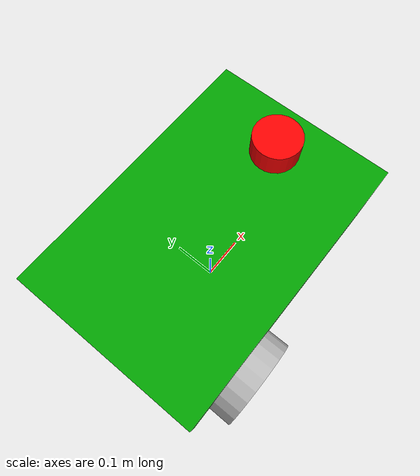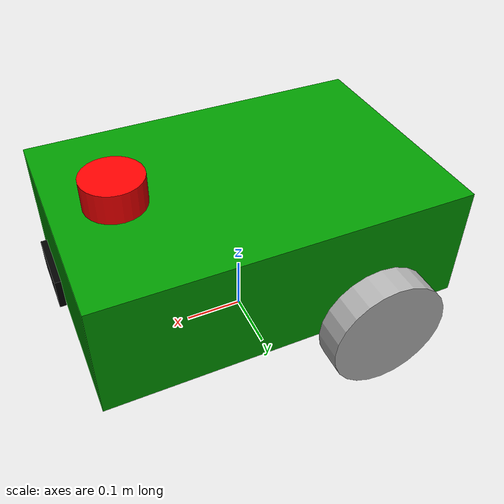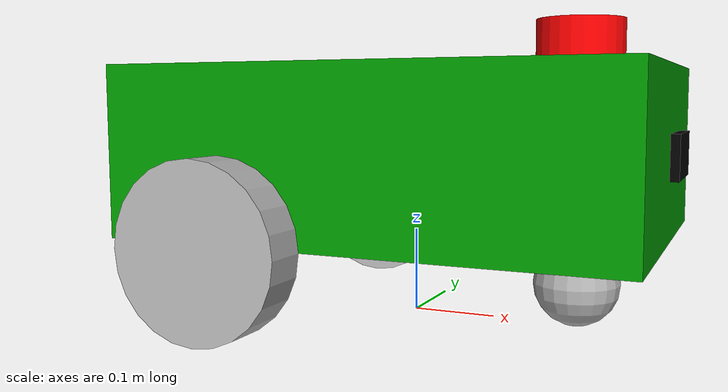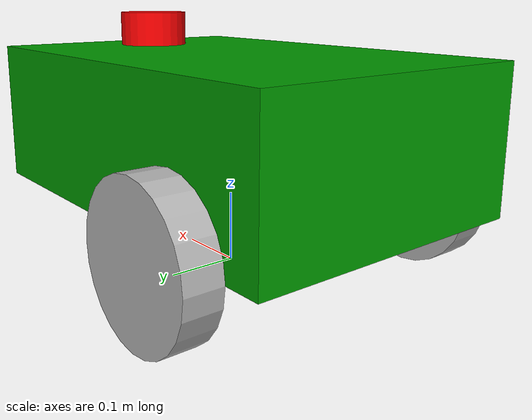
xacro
<?xml version="1.0"?>
<robot name="turtlebot" xmlns:xacro="http://www.ros.org/wiki/xacro">

    <xacro:include filename="$(find turtlebot_description)/urdf/common_properties.xacro" />
    <xacro:include filename="$(find turtlebot_description)/urdf/mobile_base.xacro" />
    <xacro:include filename = "$(find turtlebot_description)/urdf/lidar.xacro" />
    <xacro:include filename = "$(find turtlebot_description)/urdf/gazebo_mobile.xacro" />
    <xacro:include filename = "$(find turtlebot_description)/urdf/camera.xacro" />
</robot>

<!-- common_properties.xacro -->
<robot xmlns:xacro="http://www.ros.org/wiki/xacro">

    <material name="green">
        <color rgba="0 0.6 0 1" />
    </material>

    <material name="gray">
        <color rgba="0.7 0.7 0.7 1" />
    </material>

    <material name = "red">
        <color rgba = "1 0 0 1" />
    </material>

    <material name="orange">
        <color rgba="1 0.3 0.1 1"/>
    </material>

    <material name="blue">
        <color rgba="0.2 0.2 1 1"/>
    </material>

    <material name="black">
        <color rgba="0 0 0 1"/>
    </material>

    <xacro:macro name = "box_inertia" params = "m x y z o_xyz o_rpy">
        <inertial>
            <mass value = "${m}" />
            <origin xyz = "${o_xyz}" rpy = "${o_rpy}" />
            <inertia ixx = "${ (m/12) * (z*z + y*y)}" ixy = "0" ixz = "0"
                iyy = "${ (m/12) * (x*x + z*z)}" iyz = "0"
                izz = "${ (m/12) * (x*x + y*y)}" />
        </inertial>
    </xacro:macro>

    <xacro:macro name = "cylinder_inertia" params = "m r l o_xyz o_rpy">
        <inertial>
            <mass value = "${m}" />
            <origin xyz = "${o_xyz}" rpy = "${o_rpy}" />
            <inertia ixx = "${ (m/12) * (3*r*r + l*l)}" ixy = "0" ixz = "0"
                iyy = "${ (m/12) * (3*r*r + l*l)}" iyz = "0"
                izz = "${ (m/2) * (r*r)}" />
        </inertial>
    </xacro:macro>
    <xacro:macro name="sphere_inertia" params="m r o_xyz o_rpy">
        <inertial>
            <mass value="${m}" />
            <origin xyz="${o_xyz}" rpy="${o_rpy}" />
            <inertia ixx="${(2/5) * m * r * r}" ixy="0" ixz="0"
            iyy="${(2/5) * m * r * r}" iyz="0"
            izz="${(2/5) * m * r * r}" />
        </inertial>
    </xacro:macro>

</robot>

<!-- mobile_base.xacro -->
<robot xmlns:xacro="http://www.ros.org/wiki/xacro">

    <xacro:property name="base_length" value="0.6" />
    <xacro:property name="base_width" value="0.4" />
    <xacro:property name="base_height" value="0.2" />
    <xacro:property name="wheel_radius" value="0.1" />
    <xacro:property name="wheel_length" value="0.05" />

    <link name="base_footprint" />

    <link name="base_link">
        <visual>
            <geometry>
                <box size="${base_length} ${base_width} ${base_height}" />
            </geometry>
            <origin xyz="0 0 ${base_height / 2.0}" rpy="0 0 0" />
            <material name="green" />
        </visual>
        <collision>
            <geometry>
                <box size = "${base_length} ${base_width} ${base_height}" />
            </geometry>
            <origin xyz = "0 0 ${base_height / 2.0}" rpy = "0 0 0" />
        </collision>
        <xacro:box_inertia m = "5.0" x = "${base_length}" y = "${base_width}"
            z = "${base_height}" o_xyz = "0 0 ${base_height / 2.0}" o_rpy = "0 0 0" />
    </link>

    <xacro:macro name="wheel_link" params="prefix">
        <link name="${prefix}_wheel_link">
            <visual>
                <geometry>
                    <cylinder radius = "${wheel_radius}" length = "${wheel_length}"/>
                </geometry>
                <origin xyz="0 0 0" rpy="${pi / 2.0} 0 0" />
                <material name="gray" />
            </visual>
            <collision>
                <geometry>
                    <sphere radius = "${wheel_radius}" />
                </geometry>
                <origin xyz = "0 0 0" rpy = "0 0 0" />
            </collision>
            <xacro:cylinder_inertia m = "1.0" r = "${wheel_radius}" l = "${wheel_length}"
                o_xyz = "0 0 0" o_rpy = "${pi / 2.0} 0 0" />
        </link>
    </xacro:macro>

    <xacro:wheel_link prefix="right" />
    <xacro:wheel_link prefix="left" />

    <link name="caster_wheel_link">
        <visual>
            <geometry>
                <sphere radius="${wheel_radius / 2.0}" />
            </geometry>
            <origin xyz="0 0 0" rpy="0 0 0" />
            <material name="gray" />
        </visual>
        <collision>
            <geometry>
                <sphere radius = "${wheel_radius / 2.0}" />
            </geometry>
            <origin xyz = "0 0 0" rpy = "0 0 0" />
        </collision>
        <xacro:sphere_inertia m = "0.5" r = "${wheel_radius / 2.0}"
            o_xyz = "0 0 0" o_rpy = "0 0 0" />
    </link>

    <joint name="base_joint" type="fixed">
        <parent link="base_footprint" />
        <child link="base_link" />
        <origin xyz="0 0 ${wheel_radius}" rpy="0 0 0" />
    </joint>

    <joint name="base_right_wheel_joint" type="continuous">
        <parent link="base_link" />
        <child link="right_wheel_link" />
        <origin xyz="${-base_length / 4.0} ${-(base_width + wheel_length) / 2.0} 0" rpy="0 0 0" />
        <axis xyz="0 1 0" />
    </joint>

    <joint name="base_left_wheel_joint" type="continuous">
        <parent link="base_link" />
        <child link="left_wheel_link" />
        <origin xyz="${-base_length / 4.0} ${(base_width + wheel_length) / 2.0} 0" rpy="0 0 0" />
        <axis xyz="0 1 0" />
    </joint>

    <joint name="base_caster_wheel_joint" type="fixed">
        <parent link="base_link" />
        <child link="caster_wheel_link" />
        <origin xyz="${base_length / 3.0} 0 ${-wheel_radius / 2.0}" rpy="0 0 0" />
    </joint>

</robot>

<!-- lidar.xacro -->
<robot xmlns:xacro="http://www.ros.org/wiki/xacro">
    <link name = "laser_frame">
        <visual>
            <geometry>
                <cylinder radius = "${wheel_radius /2}" length = "${wheel_length}"/>
            </geometry>
            <origin xyz = "0 0 0" rpy = "0 0 0" />
            <material name = "red" />
        </visual>
        <collision>
            <geometry>
                <cylinder radius = "${wheel_radius / 2}" length = "${wheel_length}"/>
            </geometry>
            <origin xyz = "0 0 0" rpy = "0 0 0" />
        </collision>
        <xacro:cylinder_inertia m = "1.0" r = "${wheel_radius / 2}" l = "${wheel_length}"
            o_xyz = "0 0 0" o_rpy = "0 0 0" />
    </link>
    <joint name = "laser_joint" type = "fixed">
        <parent link = "base_link" />
        <child link = "laser_frame" />
        <origin xyz = "${base_length / 3} 0 0.225" rpy = "0 0 0"/>
    </joint>

     <gazebo reference="laser_frame">
        <sensor name="laser" type="gpu_lidar">
            <pose> 0 0 0 0 0 0 </pose>
            <always_on>true</always_on>
            <visualize>true</visualize>
            <update_rate>10</update_rate>
	    <topic>scan</topic>
            <gz_frame_id>laser_frame</gz_frame_id>
             <lidar>
                <scan>
                   <horizontal>
                   <samples>360</samples>
                   <min_angle>-3.14</min_angle>
                   <max_angle>3.14</max_angle>
                   </horizontal>
                </scan>
                <range>
                   <min>0.3</min>
                   <max>12.0</max>
                </range>
             </lidar>
        </sensor>
    </gazebo>
</robot>

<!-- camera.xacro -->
<robot xmlns:xacro="http://www.ros.org/wiki/xacro">
    <link name = "camera_frame">
        <visual>
            <geometry>
                <box size = "0.01 0.1 0.05" />
            </geometry>
            <origin xyz = "0 0 0" rpy = "0 0 0" />
            <material name = "black" />
        </visual>
        <collision>
            <geometry>
                <box size = "0.01 0.1 0.05" />
            </geometry>
            <origin xyz = "0 0 0" rpy = "0 0 0" />
        </collision>
        <xacro:box_inertia m = "0.1" x = "0.01" y = "0.1" z = "0.05"
            o_xyz = "0 0 0" o_rpy = "0 0 0" />
    </link>
    <joint name = "camera_joint" type = "fixed">
        <parent link = "base_link" />
        <child link = "camera_frame" />
        <origin xyz = "0.31 0 ${base_height / 2}" rpy = "0 0 0"/>
    </joint>

</robot>
